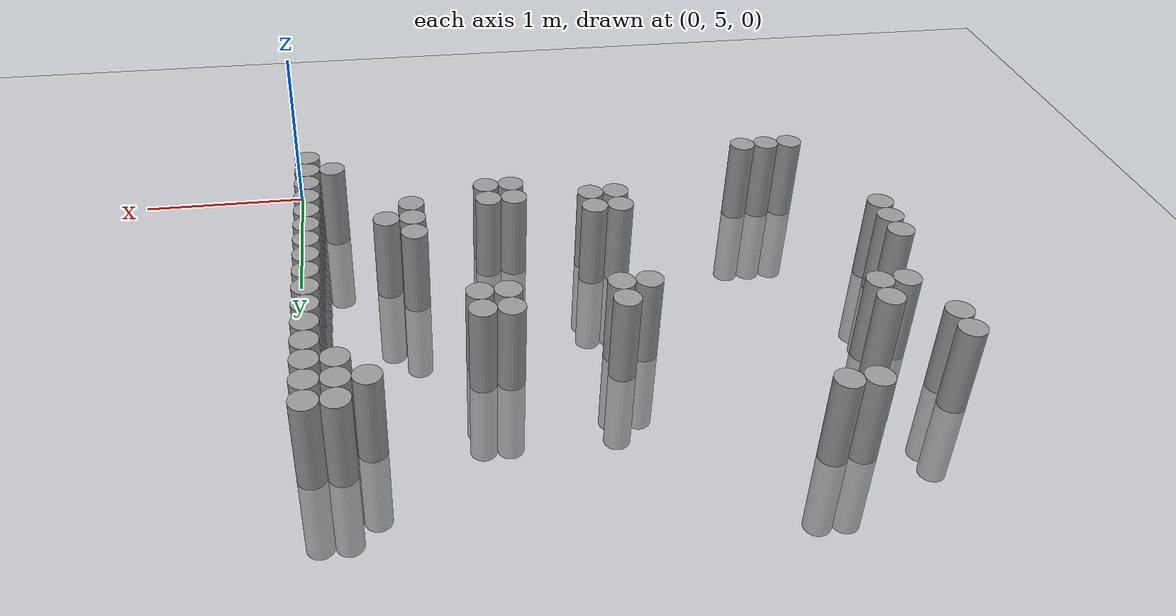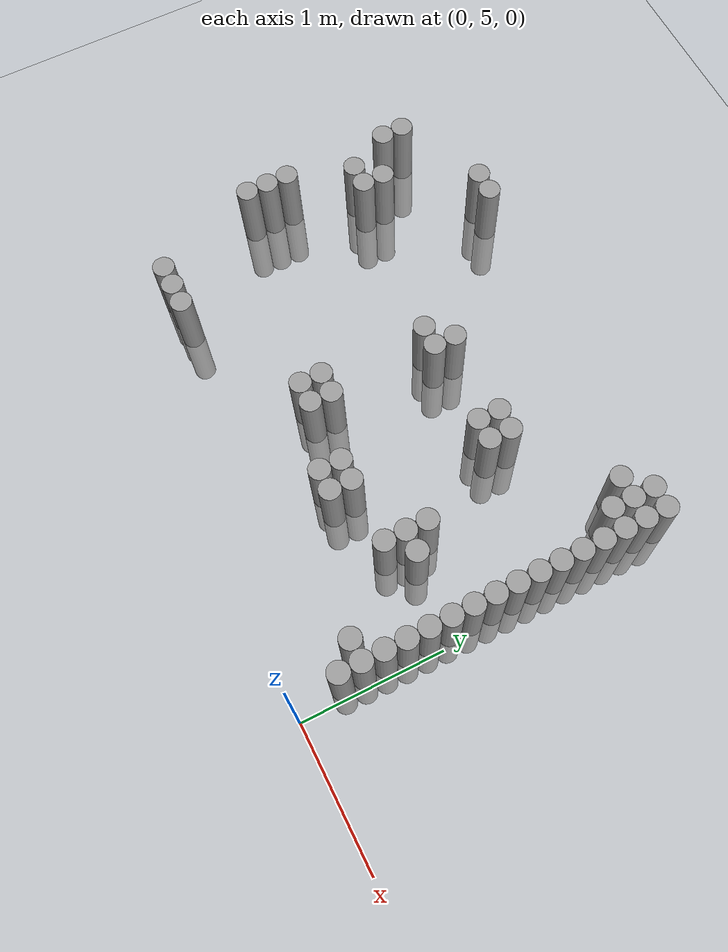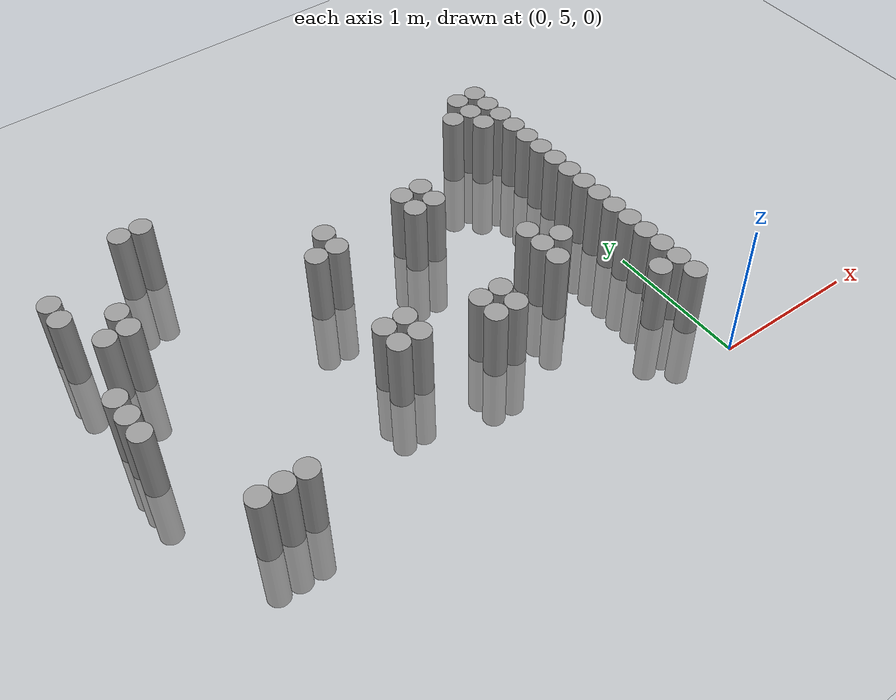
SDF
<sdf version="1.6">
 <world name="default">
  <model name="ground_plane">
   <static>1</static>
   <link name="link">
    <collision name="collision">
     <geometry><plane><normal>0 0 1</normal><size>100 100</size></plane></geometry>
     <surface><friction><ode><mu>100</mu><mu2>50</mu2></ode></friction></surface>
    </collision>
    <visual name="visual">
     <cast_shadows>0</cast_shadows>
     <geometry><plane><normal>0 0 1</normal><size>100 100</size></plane></geometry>
     <material>
      <script><uri>file://media/materials/scripts/gazebo.material</uri><name>Gazebo/Grey</name></script>
     </material>
    </visual>
   </link>
  </model>
  <model name="unit_cylinder_152">
   <pose>-3.375000 6.225000 0.000000 0.000000 0.000000 0.000000</pose>
   <link name="link">
    <inertial>
     <mass>1</mass>
     <inertia><ixx>0.145833</ixx><ixy>0</ixy><ixz>0</ixz><iyy>0.145833</iyy><iyz>0</iyz><izz>0.125</izz></inertia>
    </inertial>
    <collision name="collision">
     <geometry><cylinder><radius>0.075000</radius><length>1</length></cylinder></geometry>
    </collision>
    <visual name="visual">
     <geometry><cylinder><radius>0.075000</radius><length>1</length></cylinder></geometry>
     <material>
      <script><name>Gazebo/Grey</name><uri>file://media/materials/scripts/gazebo.material</uri></script>
     </material>
    </visual>
   </link>
  </model>
  <model name="unit_cylinder_153">
   <pose>-3.375000 6.375000 0.000000 0.000000 0.000000 0.000000</pose>
   <link name="link">
    <inertial>
     <mass>1</mass>
     <inertia><ixx>0.145833</ixx><ixy>0</ixy><ixz>0</ixz><iyy>0.145833</iyy><iyz>0</iyz><izz>0.125</izz></inertia>
    </inertial>
    <collision name="collision">
     <geometry><cylinder><radius>0.075000</radius><length>1</length></cylinder></geometry>
    </collision>
    <visual name="visual">
     <geometry><cylinder><radius>0.075000</radius><length>1</length></cylinder></geometry>
     <material>
      <script><name>Gazebo/Grey</name><uri>file://media/materials/scripts/gazebo.material</uri></script>
     </material>
    </visual>
   </link>
  </model>
  <model name="unit_cylinder_154">
   <pose>-3.375000 6.525000 0.000000 0.000000 0.000000 0.000000</pose>
   <link name="link">
    <inertial>
     <mass>1</mass>
     <inertia><ixx>0.145833</ixx><ixy>0</ixy><ixz>0</ixz><iyy>0.145833</iyy><iyz>0</iyz><izz>0.125</izz></inertia>
    </inertial>
    <collision name="collision">
     <geometry><cylinder><radius>0.075000</radius><length>1</length></cylinder></geometry>
    </collision>
    <visual name="visual">
     <geometry><cylinder><radius>0.075000</radius><length>1</length></cylinder></geometry>
     <material>
      <script><name>Gazebo/Grey</name><uri>file://media/materials/scripts/gazebo.material</uri></script>
     </material>
    </visual>
   </link>
  </model>
  <model name="unit_cylinder_155">
   <pose>-3.375000 7.275000 0.000000 0.000000 0.000000 0.000000</pose>
   <link name="link">
    <inertial>
     <mass>1</mass>
     <inertia><ixx>0.145833</ixx><ixy>0</ixy><ixz>0</ixz><iyy>0.145833</iyy><iyz>0</iyz><izz>0.125</izz></inertia>
    </inertial>
    <collision name="collision">
     <geometry><cylinder><radius>0.075000</radius><length>1</length></cylinder></geometry>
    </collision>
    <visual name="visual">
     <geometry><cylinder><radius>0.075000</radius><length>1</length></cylinder></geometry>
     <material>
      <script><name>Gazebo/Grey</name><uri>file://media/materials/scripts/gazebo.material</uri></script>
     </material>
    </visual>
   </link>
  </model>
  <model name="unit_cylinder_156">
   <pose>-3.375000 7.425000 0.000000 0.000000 0.000000 0.000000</pose>
   <link name="link">
    <inertial>
     <mass>1</mass>
     <inertia><ixx>0.145833</ixx><ixy>0</ixy><ixz>0</ixz><iyy>0.145833</iyy><iyz>0</iyz><izz>0.125</izz></inertia>
    </inertial>
    <collision name="collision">
     <geometry><cylinder><radius>0.075000</radius><length>1</length></cylinder></geometry>
    </collision>
    <visual name="visual">
     <geometry><cylinder><radius>0.075000</radius><length>1</length></cylinder></geometry>
     <material>
      <script><name>Gazebo/Grey</name><uri>file://media/materials/scripts/gazebo.material</uri></script>
     </material>
    </visual>
   </link>
  </model>
  <model name="unit_cylinder_157">
   <pose>-3.225000 6.975000 0.000000 0.000000 0.000000 0.000000</pose>
   <link name="link">
    <inertial>
     <mass>1</mass>
     <inertia><ixx>0.145833</ixx><ixy>0</ixy><ixz>0</ixz><iyy>0.145833</iyy><iyz>0</iyz><izz>0.125</izz></inertia>
    </inertial>
    <collision name="collision">
     <geometry><cylinder><radius>0.075000</radius><length>1</length></cylinder></geometry>
    </collision>
    <visual name="visual">
     <geometry><cylinder><radius>0.075000</radius><length>1</length></cylinder></geometry>
     <material>
      <script><name>Gazebo/Grey</name><uri>file://media/materials/scripts/gazebo.material</uri></script>
     </material>
    </visual>
   </link>
  </model>
  <model name="unit_cylinder_159">
   <pose>-3.075000 5.475000 0.000000 0.000000 0.000000 0.000000</pose>
   <link name="link">
    <inertial>
     <mass>1</mass>
     <inertia><ixx>0.145833</ixx><ixy>0</ixy><ixz>0</ixz><iyy>0.145833</iyy><iyz>0</iyz><izz>0.125</izz></inertia>
    </inertial>
    <collision name="collision">
     <geometry><cylinder><radius>0.075000</radius><length>1</length></cylinder></geometry>
    </collision>
    <visual name="visual">
     <geometry><cylinder><radius>0.075000</radius><length>1</length></cylinder></geometry>
     <material>
      <script><name>Gazebo/Grey</name><uri>file://media/materials/scripts/gazebo.material</uri></script>
     </material>
    </visual>
   </link>
  </model>
  <model name="unit_cylinder_160">
   <pose>-3.075000 6.975000 0.000000 0.000000 0.000000 0.000000</pose>
   <link name="link">
    <inertial>
     <mass>1</mass>
     <inertia><ixx>0.145833</ixx><ixy>0</ixy><ixz>0</ixz><iyy>0.145833</iyy><iyz>0</iyz><izz>0.125</izz></inertia>
    </inertial>
    <collision name="collision">
     <geometry><cylinder><radius>0.075000</radius><length>1</length></cylinder></geometry>
    </collision>
    <visual name="visual">
     <geometry><cylinder><radius>0.075000</radius><length>1</length></cylinder></geometry>
     <material>
      <script><name>Gazebo/Grey</name><uri>file://media/materials/scripts/gazebo.material</uri></script>
     </material>
    </visual>
   </link>
  </model>
  <model name="unit_cylinder_161">
   <pose>-3.075000 7.125000 0.000000 0.000000 0.000000 0.000000</pose>
   <link name="link">
    <inertial>
     <mass>1</mass>
     <inertia><ixx>0.145833</ixx><ixy>0</ixy><ixz>0</ixz><iyy>0.145833</iyy><iyz>0</iyz><izz>0.125</izz></inertia>
    </inertial>
    <collision name="collision">
     <geometry><cylinder><radius>0.075000</radius><length>1</length></cylinder></geometry>
    </collision>
    <visual name="visual">
     <geometry><cylinder><radius>0.075000</radius><length>1</length></cylinder></geometry>
     <material>
      <script><name>Gazebo/Grey</name><uri>file://media/materials/scripts/gazebo.material</uri></script>
     </material>
    </visual>
   </link>
  </model>
  <model name="unit_cylinder_164">
   <pose>-2.925000 5.475000 0.000000 0.000000 0.000000 0.000000</pose>
   <link name="link">
    <inertial>
     <mass>1</mass>
     <inertia><ixx>0.145833</ixx><ixy>0</ixy><ixz>0</ixz><iyy>0.145833</iyy><iyz>0</iyz><izz>0.125</izz></inertia>
    </inertial>
    <collision name="collision">
     <geometry><cylinder><radius>0.075000</radius><length>1</length></cylinder></geometry>
    </collision>
    <visual name="visual">
     <geometry><cylinder><radius>0.075000</radius><length>1</length></cylinder></geometry>
     <material>
      <script><name>Gazebo/Grey</name><uri>file://media/materials/scripts/gazebo.material</uri></script>
     </material>
    </visual>
   </link>
  </model>
  <model name="unit_cylinder_169">
   <pose>-2.775000 5.475000 0.000000 0.000000 0.000000 0.000000</pose>
   <link name="link">
    <inertial>
     <mass>1</mass>
     <inertia><ixx>0.145833</ixx><ixy>0</ixy><ixz>0</ixz><iyy>0.145833</iyy><iyz>0</iyz><izz>0.125</izz></inertia>
    </inertial>
    <collision name="collision">
     <geometry><cylinder><radius>0.075000</radius><length>1</length></cylinder></geometry>
    </collision>
    <visual name="visual">
     <geometry><cylinder><radius>0.075000</radius><length>1</length></cylinder></geometry>
     <material>
      <script><name>Gazebo/Grey</name><uri>file://media/materials/scripts/gazebo.material</uri></script>
     </material>
    </visual>
   </link>
  </model>
  <model name="unit_cylinder_170">
   <pose>-2.775000 7.725000 0.000000 0.000000 0.000000 0.000000</pose>
   <link name="link">
    <inertial>
     <mass>1</mass>
     <inertia><ixx>0.145833</ixx><ixy>0</ixy><ixz>0</ixz><iyy>0.145833</iyy><iyz>0</iyz><izz>0.125</izz></inertia>
    </inertial>
    <collision name="collision">
     <geometry><cylinder><radius>0.075000</radius><length>1</length></cylinder></geometry>
    </collision>
    <visual name="visual">
     <geometry><cylinder><radius>0.075000</radius><length>1</length></cylinder></geometry>
     <material>
      <script><name>Gazebo/Grey</name><uri>file://media/materials/scripts/gazebo.material</uri></script>
     </material>
    </visual>
   </link>
  </model>
  <model name="unit_cylinder_176">
   <pose>-2.625000 7.725000 0.000000 0.000000 0.000000 0.000000</pose>
   <link name="link">
    <inertial>
     <mass>1</mass>
     <inertia><ixx>0.145833</ixx><ixy>0</ixy><ixz>0</ixz><iyy>0.145833</iyy><iyz>0</iyz><izz>0.125</izz></inertia>
    </inertial>
    <collision name="collision">
     <geometry><cylinder><radius>0.075000</radius><length>1</length></cylinder></geometry>
    </collision>
    <visual name="visual">
     <geometry><cylinder><radius>0.075000</radius><length>1</length></cylinder></geometry>
     <material>
      <script><name>Gazebo/Grey</name><uri>file://media/materials/scripts/gazebo.material</uri></script>
     </material>
    </visual>
   </link>
  </model>
  <model name="unit_cylinder_196">
   <pose>-1.875000 5.925000 0.000000 0.000000 0.000000 0.000000</pose>
   <link name="link">
    <inertial>
     <mass>1</mass>
     <inertia><ixx>0.145833</ixx><ixy>0</ixy><ixz>0</ixz><iyy>0.145833</iyy><iyz>0</iyz><izz>0.125</izz></inertia>
    </inertial>
    <collision name="collision">
     <geometry><cylinder><radius>0.075000</radius><length>1</length></cylinder></geometry>
    </collision>
    <visual name="visual">
     <geometry><cylinder><radius>0.075000</radius><length>1</length></cylinder></geometry>
     <material>
      <script><name>Gazebo/Grey</name><uri>file://media/materials/scripts/gazebo.material</uri></script>
     </material>
    </visual>
   </link>
  </model>
  <model name="unit_cylinder_197">
   <pose>-1.875000 6.075000 0.000000 0.000000 0.000000 0.000000</pose>
   <link name="link">
    <inertial>
     <mass>1</mass>
     <inertia><ixx>0.145833</ixx><ixy>0</ixy><ixz>0</ixz><iyy>0.145833</iyy><iyz>0</iyz><izz>0.125</izz></inertia>
    </inertial>
    <collision name="collision">
     <geometry><cylinder><radius>0.075000</radius><length>1</length></cylinder></geometry>
    </collision>
    <visual name="visual">
     <geometry><cylinder><radius>0.075000</radius><length>1</length></cylinder></geometry>
     <material>
      <script><name>Gazebo/Grey</name><uri>file://media/materials/scripts/gazebo.material</uri></script>
     </material>
    </visual>
   </link>
  </model>
  <model name="unit_cylinder_198">
   <pose>-1.875000 6.825000 0.000000 0.000000 0.000000 0.000000</pose>
   <link name="link">
    <inertial>
     <mass>1</mass>
     <inertia><ixx>0.145833</ixx><ixy>0</ixy><ixz>0</ixz><iyy>0.145833</iyy><iyz>0</iyz><izz>0.125</izz></inertia>
    </inertial>
    <collision name="collision">
     <geometry><cylinder><radius>0.075000</radius><length>1</length></cylinder></geometry>
    </collision>
    <visual name="visual">
     <geometry><cylinder><radius>0.075000</radius><length>1</length></cylinder></geometry>
     <material>
      <script><name>Gazebo/Grey</name><uri>file://media/materials/scripts/gazebo.material</uri></script>
     </material>
    </visual>
   </link>
  </model>
  <model name="unit_cylinder_201">
   <pose>-1.725000 5.925000 0.000000 0.000000 0.000000 0.000000</pose>
   <link name="link">
    <inertial>
     <mass>1</mass>
     <inertia><ixx>0.145833</ixx><ixy>0</ixy><ixz>0</ixz><iyy>0.145833</iyy><iyz>0</iyz><izz>0.125</izz></inertia>
    </inertial>
    <collision name="collision">
     <geometry><cylinder><radius>0.075000</radius><length>1</length></cylinder></geometry>
    </collision>
    <visual name="visual">
     <geometry><cylinder><radius>0.075000</radius><length>1</length></cylinder></geometry>
     <material>
      <script><name>Gazebo/Grey</name><uri>file://media/materials/scripts/gazebo.material</uri></script>
     </material>
    </visual>
   </link>
  </model>
  <model name="unit_cylinder_202">
   <pose>-1.725000 6.075000 0.000000 0.000000 0.000000 0.000000</pose>
   <link name="link">
    <inertial>
     <mass>1</mass>
     <inertia><ixx>0.145833</ixx><ixy>0</ixy><ixz>0</ixz><iyy>0.145833</iyy><iyz>0</iyz><izz>0.125</izz></inertia>
    </inertial>
    <collision name="collision">
     <geometry><cylinder><radius>0.075000</radius><length>1</length></cylinder></geometry>
    </collision>
    <visual name="visual">
     <geometry><cylinder><radius>0.075000</radius><length>1</length></cylinder></geometry>
     <material>
      <script><name>Gazebo/Grey</name><uri>file://media/materials/scripts/gazebo.material</uri></script>
     </material>
    </visual>
   </link>
  </model>
  <model name="unit_cylinder_203">
   <pose>-1.725000 6.825000 0.000000 0.000000 0.000000 0.000000</pose>
   <link name="link">
    <inertial>
     <mass>1</mass>
     <inertia><ixx>0.145833</ixx><ixy>0</ixy><ixz>0</ixz><iyy>0.145833</iyy><iyz>0</iyz><izz>0.125</izz></inertia>
    </inertial>
    <collision name="collision">
     <geometry><cylinder><radius>0.075000</radius><length>1</length></cylinder></geometry>
    </collision>
    <visual name="visual">
     <geometry><cylinder><radius>0.075000</radius><length>1</length></cylinder></geometry>
     <material>
      <script><name>Gazebo/Grey</name><uri>file://media/materials/scripts/gazebo.material</uri></script>
     </material>
    </visual>
   </link>
  </model>
  <model name="unit_cylinder_204">
   <pose>-1.725000 6.975000 0.000000 0.000000 0.000000 0.000000</pose>
   <link name="link">
    <inertial>
     <mass>1</mass>
     <inertia><ixx>0.145833</ixx><ixy>0</ixy><ixz>0</ixz><iyy>0.145833</iyy><iyz>0</iyz><izz>0.125</izz></inertia>
    </inertial>
    <collision name="collision">
     <geometry><cylinder><radius>0.075000</radius><length>1</length></cylinder></geometry>
    </collision>
    <visual name="visual">
     <geometry><cylinder><radius>0.075000</radius><length>1</length></cylinder></geometry>
     <material>
      <script><name>Gazebo/Grey</name><uri>file://media/materials/scripts/gazebo.material</uri></script>
     </material>
    </visual>
   </link>
  </model>
  <model name="unit_cylinder_209">
   <pose>-1.275000 5.775000 0.000000 0.000000 0.000000 0.000000</pose>
   <link name="link">
    <inertial>
     <mass>1</mass>
     <inertia><ixx>0.145833</ixx><ixy>0</ixy><ixz>0</ixz><iyy>0.145833</iyy><iyz>0</iyz><izz>0.125</izz></inertia>
    </inertial>
    <collision name="collision">
     <geometry><cylinder><radius>0.075000</radius><length>1</length></cylinder></geometry>
    </collision>
    <visual name="visual">
     <geometry><cylinder><radius>0.075000</radius><length>1</length></cylinder></geometry>
     <material>
      <script><name>Gazebo/Grey</name><uri>file://media/materials/scripts/gazebo.material</uri></script>
     </material>
    </visual>
   </link>
  </model>
  <model name="unit_cylinder_210">
   <pose>-1.275000 5.925000 0.000000 0.000000 0.000000 0.000000</pose>
   <link name="link">
    <inertial>
     <mass>1</mass>
     <inertia><ixx>0.145833</ixx><ixy>0</ixy><ixz>0</ixz><iyy>0.145833</iyy><iyz>0</iyz><izz>0.125</izz></inertia>
    </inertial>
    <collision name="collision">
     <geometry><cylinder><radius>0.075000</radius><length>1</length></cylinder></geometry>
    </collision>
    <visual name="visual">
     <geometry><cylinder><radius>0.075000</radius><length>1</length></cylinder></geometry>
     <material>
      <script><name>Gazebo/Grey</name><uri>file://media/materials/scripts/gazebo.material</uri></script>
     </material>
    </visual>
   </link>
  </model>
  <model name="unit_cylinder_212">
   <pose>-1.125000 5.775000 0.000000 0.000000 0.000000 0.000000</pose>
   <link name="link">
    <inertial>
     <mass>1</mass>
     <inertia><ixx>0.145833</ixx><ixy>0</ixy><ixz>0</ixz><iyy>0.145833</iyy><iyz>0</iyz><izz>0.125</izz></inertia>
    </inertial>
    <collision name="collision">
     <geometry><cylinder><radius>0.075000</radius><length>1</length></cylinder></geometry>
    </collision>
    <visual name="visual">
     <geometry><cylinder><radius>0.075000</radius><length>1</length></cylinder></geometry>
     <material>
      <script><name>Gazebo/Grey</name><uri>file://media/materials/scripts/gazebo.material</uri></script>
     </material>
    </visual>
   </link>
  </model>
  <model name="unit_cylinder_213">
   <pose>-1.125000 5.925000 0.000000 0.000000 0.000000 0.000000</pose>
   <link name="link">
    <inertial>
     <mass>1</mass>
     <inertia><ixx>0.145833</ixx><ixy>0</ixy><ixz>0</ixz><iyy>0.145833</iyy><iyz>0</iyz><izz>0.125</izz></inertia>
    </inertial>
    <collision name="collision">
     <geometry><cylinder><radius>0.075000</radius><length>1</length></cylinder></geometry>
    </collision>
    <visual name="visual">
     <geometry><cylinder><radius>0.075000</radius><length>1</length></cylinder></geometry>
     <material>
      <script><name>Gazebo/Grey</name><uri>file://media/materials/scripts/gazebo.material</uri></script>
     </material>
    </visual>
   </link>
  </model>
  <model name="unit_cylinder_214">
   <pose>-1.125000 6.825000 0.000000 0.000000 0.000000 0.000000</pose>
   <link name="link">
    <inertial>
     <mass>1</mass>
     <inertia><ixx>0.145833</ixx><ixy>0</ixy><ixz>0</ixz><iyy>0.145833</iyy><iyz>0</iyz><izz>0.125</izz></inertia>
    </inertial>
    <collision name="collision">
     <geometry><cylinder><radius>0.075000</radius><length>1</length></cylinder></geometry>
    </collision>
    <visual name="visual">
     <geometry><cylinder><radius>0.075000</radius><length>1</length></cylinder></geometry>
     <material>
      <script><name>Gazebo/Grey</name><uri>file://media/materials/scripts/gazebo.material</uri></script>
     </material>
    </visual>
   </link>
  </model>
  <model name="unit_cylinder_215">
   <pose>-1.125000 6.975000 0.000000 0.000000 0.000000 0.000000</pose>
   <link name="link">
    <inertial>
     <mass>1</mass>
     <inertia><ixx>0.145833</ixx><ixy>0</ixy><ixz>0</ixz><iyy>0.145833</iyy><iyz>0</iyz><izz>0.125</izz></inertia>
    </inertial>
    <collision name="collision">
     <geometry><cylinder><radius>0.075000</radius><length>1</length></cylinder></geometry>
    </collision>
    <visual name="visual">
     <geometry><cylinder><radius>0.075000</radius><length>1</length></cylinder></geometry>
     <material>
      <script><name>Gazebo/Grey</name><uri>file://media/materials/scripts/gazebo.material</uri></script>
     </material>
    </visual>
   </link>
  </model>
  <model name="unit_cylinder_216">
   <pose>-0.975000 6.825000 0.000000 0.000000 0.000000 0.000000</pose>
   <link name="link">
    <inertial>
     <mass>1</mass>
     <inertia><ixx>0.145833</ixx><ixy>0</ixy><ixz>0</ixz><iyy>0.145833</iyy><iyz>0</iyz><izz>0.125</izz></inertia>
    </inertial>
    <collision name="collision">
     <geometry><cylinder><radius>0.075000</radius><length>1</length></cylinder></geometry>
    </collision>
    <visual name="visual">
     <geometry><cylinder><radius>0.075000</radius><length>1</length></cylinder></geometry>
     <material>
      <script><name>Gazebo/Grey</name><uri>file://media/materials/scripts/gazebo.material</uri></script>
     </material>
    </visual>
   </link>
  </model>
  <model name="unit_cylinder_217">
   <pose>-0.975000 6.975000 0.000000 0.000000 0.000000 0.000000</pose>
   <link name="link">
    <inertial>
     <mass>1</mass>
     <inertia><ixx>0.145833</ixx><ixy>0</ixy><ixz>0</ixz><iyy>0.145833</iyy><iyz>0</iyz><izz>0.125</izz></inertia>
    </inertial>
    <collision name="collision">
     <geometry><cylinder><radius>0.075000</radius><length>1</length></cylinder></geometry>
    </collision>
    <visual name="visual">
     <geometry><cylinder><radius>0.075000</radius><length>1</length></cylinder></geometry>
     <material>
      <script><name>Gazebo/Grey</name><uri>file://media/materials/scripts/gazebo.material</uri></script>
     </material>
    </visual>
   </link>
  </model>
  <model name="unit_cylinder_218">
   <pose>-0.675000 5.925000 0.000000 0.000000 0.000000 0.000000</pose>
   <link name="link">
    <inertial>
     <mass>1</mass>
     <inertia><ixx>0.145833</ixx><ixy>0</ixy><ixz>0</ixz><iyy>0.145833</iyy><iyz>0</iyz><izz>0.125</izz></inertia>
    </inertial>
    <collision name="collision">
     <geometry><cylinder><radius>0.075000</radius><length>1</length></cylinder></geometry>
    </collision>
    <visual name="visual">
     <geometry><cylinder><radius>0.075000</radius><length>1</length></cylinder></geometry>
     <material>
      <script><name>Gazebo/Grey</name><uri>file://media/materials/scripts/gazebo.material</uri></script>
     </material>
    </visual>
   </link>
  </model>
  <model name="unit_cylinder_219">
   <pose>-0.675000 6.075000 0.000000 0.000000 0.000000 0.000000</pose>
   <link name="link">
    <inertial>
     <mass>1</mass>
     <inertia><ixx>0.145833</ixx><ixy>0</ixy><ixz>0</ixz><iyy>0.145833</iyy><iyz>0</iyz><izz>0.125</izz></inertia>
    </inertial>
    <collision name="collision">
     <geometry><cylinder><radius>0.075000</radius><length>1</length></cylinder></geometry>
    </collision>
    <visual name="visual">
     <geometry><cylinder><radius>0.075000</radius><length>1</length></cylinder></geometry>
     <material>
      <script><name>Gazebo/Grey</name><uri>file://media/materials/scripts/gazebo.material</uri></script>
     </material>
    </visual>
   </link>
  </model>
  <model name="unit_cylinder_220">
   <pose>-0.675000 6.225000 0.000000 0.000000 0.000000 0.000000</pose>
   <link name="link">
    <inertial>
     <mass>1</mass>
     <inertia><ixx>0.145833</ixx><ixy>0</ixy><ixz>0</ixz><iyy>0.145833</iyy><iyz>0</iyz><izz>0.125</izz></inertia>
    </inertial>
    <collision name="collision">
     <geometry><cylinder><radius>0.075000</radius><length>1</length></cylinder></geometry>
    </collision>
    <visual name="visual">
     <geometry><cylinder><radius>0.075000</radius><length>1</length></cylinder></geometry>
     <material>
      <script><name>Gazebo/Grey</name><uri>file://media/materials/scripts/gazebo.material</uri></script>
     </material>
    </visual>
   </link>
  </model>
  <model name="unit_cylinder_221">
   <pose>-0.525000 6.075000 0.000000 0.000000 0.000000 0.000000</pose>
   <link name="link">
    <inertial>
     <mass>1</mass>
     <inertia><ixx>0.145833</ixx><ixy>0</ixy><ixz>0</ixz><iyy>0.145833</iyy><iyz>0</iyz><izz>0.125</izz></inertia>
    </inertial>
    <collision name="collision">
     <geometry><cylinder><radius>0.075000</radius><length>1</length></cylinder></geometry>
    </collision>
    <visual name="visual">
     <geometry><cylinder><radius>0.075000</radius><length>1</length></cylinder></geometry>
     <material>
      <script><name>Gazebo/Grey</name><uri>file://media/materials/scripts/gazebo.material</uri></script>
     </material>
    </visual>
   </link>
  </model>
  <model name="unit_cylinder_223">
   <pose>-0.375000 7.425000 0.000000 0.000000 0.000000 0.000000</pose>
   <link name="link">
    <inertial>
     <mass>1</mass>
     <inertia><ixx>0.145833</ixx><ixy>0</ixy><ixz>0</ixz><iyy>0.145833</iyy><iyz>0</iyz><izz>0.125</izz></inertia>
    </inertial>
    <collision name="collision">
     <geometry><cylinder><radius>0.075000</radius><length>1</length></cylinder></geometry>
    </collision>
    <visual name="visual">
     <geometry><cylinder><radius>0.075000</radius><length>1</length></cylinder></geometry>
     <material>
      <script><name>Gazebo/Grey</name><uri>file://media/materials/scripts/gazebo.material</uri></script>
     </material>
    </visual>
   </link>
  </model>
  <model name="unit_cylinder_228">
   <pose>-0.225000 5.475000 0.000000 0.000000 0.000000 0.000000</pose>
   <link name="link">
    <inertial>
     <mass>1</mass>
     <inertia><ixx>0.145833</ixx><ixy>0</ixy><ixz>0</ixz><iyy>0.145833</iyy><iyz>0</iyz><izz>0.125</izz></inertia>
    </inertial>
    <collision name="collision">
     <geometry><cylinder><radius>0.075000</radius><length>1</length></cylinder></geometry>
    </collision>
    <visual name="visual">
     <geometry><cylinder><radius>0.075000</radius><length>1</length></cylinder></geometry>
     <material>
      <script><name>Gazebo/Grey</name><uri>file://media/materials/scripts/gazebo.material</uri></script>
     </material>
    </visual>
   </link>
  </model>
  <model name="unit_cylinder_229">
   <pose>-0.225000 7.275000 0.000000 0.000000 0.000000 0.000000</pose>
   <link name="link">
    <inertial>
     <mass>1</mass>
     <inertia><ixx>0.145833</ixx><ixy>0</ixy><ixz>0</ixz><iyy>0.145833</iyy><iyz>0</iyz><izz>0.125</izz></inertia>
    </inertial>
    <collision name="collision">
     <geometry><cylinder><radius>0.075000</radius><length>1</length></cylinder></geometry>
    </collision>
    <visual name="visual">
     <geometry><cylinder><radius>0.075000</radius><length>1</length></cylinder></geometry>
     <material>
      <script><name>Gazebo/Grey</name><uri>file://media/materials/scripts/gazebo.material</uri></script>
     </material>
    </visual>
   </link>
  </model>
  <model name="unit_cylinder_230">
   <pose>-0.225000 7.425000 0.000000 0.000000 0.000000 0.000000</pose>
   <link name="link">
    <inertial>
     <mass>1</mass>
     <inertia><ixx>0.145833</ixx><ixy>0</ixy><ixz>0</ixz><iyy>0.145833</iyy><iyz>0</iyz><izz>0.125</izz></inertia>
    </inertial>
    <collision name="collision">
     <geometry><cylinder><radius>0.075000</radius><length>1</length></cylinder></geometry>
    </collision>
    <visual name="visual">
     <geometry><cylinder><radius>0.075000</radius><length>1</length></cylinder></geometry>
     <material>
      <script><name>Gazebo/Grey</name><uri>file://media/materials/scripts/gazebo.material</uri></script>
     </material>
    </visual>
   </link>
  </model>
  <model name="unit_cylinder_231">
   <pose>-0.225000 7.575000 0.000000 0.000000 0.000000 0.000000</pose>
   <link name="link">
    <inertial>
     <mass>1</mass>
     <inertia><ixx>0.145833</ixx><ixy>0</ixy><ixz>0</ixz><iyy>0.145833</iyy><iyz>0</iyz><izz>0.125</izz></inertia>
    </inertial>
    <collision name="collision">
     <geometry><cylinder><radius>0.075000</radius><length>1</length></cylinder></geometry>
    </collision>
    <visual name="visual">
     <geometry><cylinder><radius>0.075000</radius><length>1</length></cylinder></geometry>
     <material>
      <script><name>Gazebo/Grey</name><uri>file://media/materials/scripts/gazebo.material</uri></script>
     </material>
    </visual>
   </link>
  </model>
  <model name="unit_cylinder_240">
   <pose>-0.075000 5.325000 0.000000 0.000000 0.000000 0.000000</pose>
   <link name="link">
    <inertial>
     <mass>1</mass>
     <inertia><ixx>0.145833</ixx><ixy>0</ixy><ixz>0</ixz><iyy>0.145833</iyy><iyz>0</iyz><izz>0.125</izz></inertia>
    </inertial>
    <collision name="collision">
     <geometry><cylinder><radius>0.075000</radius><length>1</length></cylinder></geometry>
    </collision>
    <visual name="visual">
     <geometry><cylinder><radius>0.075000</radius><length>1</length></cylinder></geometry>
     <material>
      <script><name>Gazebo/Grey</name><uri>file://media/materials/scripts/gazebo.material</uri></script>
     </material>
    </visual>
   </link>
  </model>
  <model name="unit_cylinder_241">
   <pose>-0.075000 5.475000 0.000000 0.000000 0.000000 0.000000</pose>
   <link name="link">
    <inertial>
     <mass>1</mass>
     <inertia><ixx>0.145833</ixx><ixy>0</ixy><ixz>0</ixz><iyy>0.145833</iyy><iyz>0</iyz><izz>0.125</izz></inertia>
    </inertial>
    <collision name="collision">
     <geometry><cylinder><radius>0.075000</radius><length>1</length></cylinder></geometry>
    </collision>
    <visual name="visual">
     <geometry><cylinder><radius>0.075000</radius><length>1</length></cylinder></geometry>
     <material>
      <script><name>Gazebo/Grey</name><uri>file://media/materials/scripts/gazebo.material</uri></script>
     </material>
    </visual>
   </link>
  </model>
  <model name="unit_cylinder_242">
   <pose>-0.075000 5.625000 0.000000 0.000000 0.000000 0.000000</pose>
   <link name="link">
    <inertial>
     <mass>1</mass>
     <inertia><ixx>0.145833</ixx><ixy>0</ixy><ixz>0</ixz><iyy>0.145833</iyy><iyz>0</iyz><izz>0.125</izz></inertia>
    </inertial>
    <collision name="collision">
     <geometry><cylinder><radius>0.075000</radius><length>1</length></cylinder></geometry>
    </collision>
    <visual name="visual">
     <geometry><cylinder><radius>0.075000</radius><length>1</length></cylinder></geometry>
     <material>
      <script><name>Gazebo/Grey</name><uri>file://media/materials/scripts/gazebo.material</uri></script>
     </material>
    </visual>
   </link>
  </model>
  <model name="unit_cylinder_243">
   <pose>-0.075000 5.775000 0.000000 0.000000 0.000000 0.000000</pose>
   <link name="link">
    <inertial>
     <mass>1</mass>
     <inertia><ixx>0.145833</ixx><ixy>0</ixy><ixz>0</ixz><iyy>0.145833</iyy><iyz>0</iyz><izz>0.125</izz></inertia>
    </inertial>
    <collision name="collision">
     <geometry><cylinder><radius>0.075000</radius><length>1</length></cylinder></geometry>
    </collision>
    <visual name="visual">
     <geometry><cylinder><radius>0.075000</radius><length>1</length></cylinder></geometry>
     <material>
      <script><name>Gazebo/Grey</name><uri>file://media/materials/scripts/gazebo.material</uri></script>
     </material>
    </visual>
   </link>
  </model>
  <model name="unit_cylinder_244">
   <pose>-0.075000 5.925000 0.000000 0.000000 0.000000 0.000000</pose>
   <link name="link">
    <inertial>
     <mass>1</mass>
     <inertia><ixx>0.145833</ixx><ixy>0</ixy><ixz>0</ixz><iyy>0.145833</iyy><iyz>0</iyz><izz>0.125</izz></inertia>
    </inertial>
    <collision name="collision">
     <geometry><cylinder><radius>0.075000</radius><length>1</length></cylinder></geometry>
    </collision>
    <visual name="visual">
     <geometry><cylinder><radius>0.075000</radius><length>1</length></cylinder></geometry>
     <material>
      <script><name>Gazebo/Grey</name><uri>file://media/materials/scripts/gazebo.material</uri></script>
     </material>
    </visual>
   </link>
  </model>
  <model name="unit_cylinder_245">
   <pose>-0.075000 6.075000 0.000000 0.000000 0.000000 0.000000</pose>
   <link name="link">
    <inertial>
     <mass>1</mass>
     <inertia><ixx>0.145833</ixx><ixy>0</ixy><ixz>0</ixz><iyy>0.145833</iyy><iyz>0</iyz><izz>0.125</izz></inertia>
    </inertial>
    <collision name="collision">
     <geometry><cylinder><radius>0.075000</radius><length>1</length></cylinder></geometry>
    </collision>
    <visual name="visual">
     <geometry><cylinder><radius>0.075000</radius><length>1</length></cylinder></geometry>
     <material>
      <script><name>Gazebo/Grey</name><uri>file://media/materials/scripts/gazebo.material</uri></script>
     </material>
    </visual>
   </link>
  </model>
  <model name="unit_cylinder_246">
   <pose>-0.075000 6.225000 0.000000 0.000000 0.000000 0.000000</pose>
   <link name="link">
    <inertial>
     <mass>1</mass>
     <inertia><ixx>0.145833</ixx><ixy>0</ixy><ixz>0</ixz><iyy>0.145833</iyy><iyz>0</iyz><izz>0.125</izz></inertia>
    </inertial>
    <collision name="collision">
     <geometry><cylinder><radius>0.075000</radius><length>1</length></cylinder></geometry>
    </collision>
    <visual name="visual">
     <geometry><cylinder><radius>0.075000</radius><length>1</length></cylinder></geometry>
     <material>
      <script><name>Gazebo/Grey</name><uri>file://media/materials/scripts/gazebo.material</uri></script>
     </material>
    </visual>
   </link>
  </model>
  <model name="unit_cylinder_247">
   <pose>-0.075000 6.375000 0.000000 0.000000 0.000000 0.000000</pose>
   <link name="link">
    <inertial>
     <mass>1</mass>
     <inertia><ixx>0.145833</ixx><ixy>0</ixy><ixz>0</ixz><iyy>0.145833</iyy><iyz>0</iyz><izz>0.125</izz></inertia>
    </inertial>
    <collision name="collision">
     <geometry><cylinder><radius>0.075000</radius><length>1</length></cylinder></geometry>
    </collision>
    <visual name="visual">
     <geometry><cylinder><radius>0.075000</radius><length>1</length></cylinder></geometry>
     <material>
      <script><name>Gazebo/Grey</name><uri>file://media/materials/scripts/gazebo.material</uri></script>
     </material>
    </visual>
   </link>
  </model>
  <model name="unit_cylinder_248">
   <pose>-0.075000 6.525000 0.000000 0.000000 0.000000 0.000000</pose>
   <link name="link">
    <inertial>
     <mass>1</mass>
     <inertia><ixx>0.145833</ixx><ixy>0</ixy><ixz>0</ixz><iyy>0.145833</iyy><iyz>0</iyz><izz>0.125</izz></inertia>
    </inertial>
    <collision name="collision">
     <geometry><cylinder><radius>0.075000</radius><length>1</length></cylinder></geometry>
    </collision>
    <visual name="visual">
     <geometry><cylinder><radius>0.075000</radius><length>1</length></cylinder></geometry>
     <material>
      <script><name>Gazebo/Grey</name><uri>file://media/materials/scripts/gazebo.material</uri></script>
     </material>
    </visual>
   </link>
  </model>
  <model name="unit_cylinder_249">
   <pose>-0.075000 6.675000 0.000000 0.000000 0.000000 0.000000</pose>
   <link name="link">
    <inertial>
     <mass>1</mass>
     <inertia><ixx>0.145833</ixx><ixy>0</ixy><ixz>0</ixz><iyy>0.145833</iyy><iyz>0</iyz><izz>0.125</izz></inertia>
    </inertial>
    <collision name="collision">
     <geometry><cylinder><radius>0.075000</radius><length>1</length></cylinder></geometry>
    </collision>
    <visual name="visual">
     <geometry><cylinder><radius>0.075000</radius><length>1</length></cylinder></geometry>
     <material>
      <script><name>Gazebo/Grey</name><uri>file://media/materials/scripts/gazebo.material</uri></script>
     </material>
    </visual>
   </link>
  </model>
  <model name="unit_cylinder_250">
   <pose>-0.075000 6.825000 0.000000 0.000000 0.000000 0.000000</pose>
   <link name="link">
    <inertial>
     <mass>1</mass>
     <inertia><ixx>0.145833</ixx><ixy>0</ixy><ixz>0</ixz><iyy>0.145833</iyy><iyz>0</iyz><izz>0.125</izz></inertia>
    </inertial>
    <collision name="collision">
     <geometry><cylinder><radius>0.075000</radius><length>1</length></cylinder></geometry>
    </collision>
    <visual name="visual">
     <geometry><cylinder><radius>0.075000</radius><length>1</length></cylinder></geometry>
     <material>
      <script><name>Gazebo/Grey</name><uri>file://media/materials/scripts/gazebo.material</uri></script>
     </material>
    </visual>
   </link>
  </model>
  <model name="unit_cylinder_251">
   <pose>-0.075000 6.975000 0.000000 0.000000 0.000000 0.000000</pose>
   <link name="link">
    <inertial>
     <mass>1</mass>
     <inertia><ixx>0.145833</ixx><ixy>0</ixy><ixz>0</ixz><iyy>0.145833</iyy><iyz>0</iyz><izz>0.125</izz></inertia>
    </inertial>
    <collision name="collision">
     <geometry><cylinder><radius>0.075000</radius><length>1</length></cylinder></geometry>
    </collision>
    <visual name="visual">
     <geometry><cylinder><radius>0.075000</radius><length>1</length></cylinder></geometry>
     <material>
      <script><name>Gazebo/Grey</name><uri>file://media/materials/scripts/gazebo.material</uri></script>
     </material>
    </visual>
   </link>
  </model>
  <model name="unit_cylinder_252">
   <pose>-0.075000 7.125000 0.000000 0.000000 0.000000 0.000000</pose>
   <link name="link">
    <inertial>
     <mass>1</mass>
     <inertia><ixx>0.145833</ixx><ixy>0</ixy><ixz>0</ixz><iyy>0.145833</iyy><iyz>0</iyz><izz>0.125</izz></inertia>
    </inertial>
    <collision name="collision">
     <geometry><cylinder><radius>0.075000</radius><length>1</length></cylinder></geometry>
    </collision>
    <visual name="visual">
     <geometry><cylinder><radius>0.075000</radius><length>1</length></cylinder></geometry>
     <material>
      <script><name>Gazebo/Grey</name><uri>file://media/materials/scripts/gazebo.material</uri></script>
     </material>
    </visual>
   </link>
  </model>
  <model name="unit_cylinder_253">
   <pose>-0.075000 7.275000 0.000000 0.000000 0.000000 0.000000</pose>
   <link name="link">
    <inertial>
     <mass>1</mass>
     <inertia><ixx>0.145833</ixx><ixy>0</ixy><ixz>0</ixz><iyy>0.145833</iyy><iyz>0</iyz><izz>0.125</izz></inertia>
    </inertial>
    <collision name="collision">
     <geometry><cylinder><radius>0.075000</radius><length>1</length></cylinder></geometry>
    </collision>
    <visual name="visual">
     <geometry><cylinder><radius>0.075000</radius><length>1</length></cylinder></geometry>
     <material>
      <script><name>Gazebo/Grey</name><uri>file://media/materials/scripts/gazebo.material</uri></script>
     </material>
    </visual>
   </link>
  </model>
  <model name="unit_cylinder_254">
   <pose>-0.075000 7.425000 0.000000 0.000000 0.000000 0.000000</pose>
   <link name="link">
    <inertial>
     <mass>1</mass>
     <inertia><ixx>0.145833</ixx><ixy>0</ixy><ixz>0</ixz><iyy>0.145833</iyy><iyz>0</iyz><izz>0.125</izz></inertia>
    </inertial>
    <collision name="collision">
     <geometry><cylinder><radius>0.075000</radius><length>1</length></cylinder></geometry>
    </collision>
    <visual name="visual">
     <geometry><cylinder><radius>0.075000</radius><length>1</length></cylinder></geometry>
     <material>
      <script><name>Gazebo/Grey</name><uri>file://media/materials/scripts/gazebo.material</uri></script>
     </material>
    </visual>
   </link>
  </model>
  <model name="unit_cylinder_255">
   <pose>-0.075000 7.575000 0.000000 0.000000 0.000000 0.000000</pose>
   <link name="link">
    <inertial>
     <mass>1</mass>
     <inertia><ixx>0.145833</ixx><ixy>0</ixy><ixz>0</ixz><iyy>0.145833</iyy><iyz>0</iyz><izz>0.125</izz></inertia>
    </inertial>
    <collision name="collision">
     <geometry><cylinder><radius>0.075000</radius><length>1</length></cylinder></geometry>
    </collision>
    <visual name="visual">
     <geometry><cylinder><radius>0.075000</radius><length>1</length></cylinder></geometry>
     <material>
      <script><name>Gazebo/Grey</name><uri>file://media/materials/scripts/gazebo.material</uri></script>
     </material>
    </visual>
   </link>
  </model>
 </world>
</sdf>
